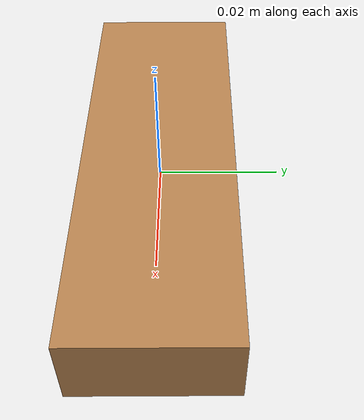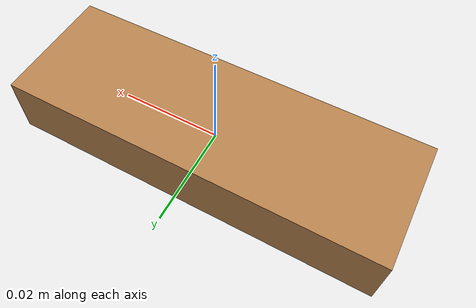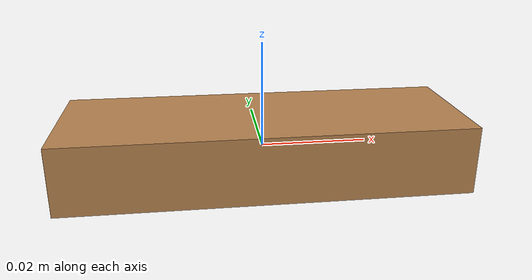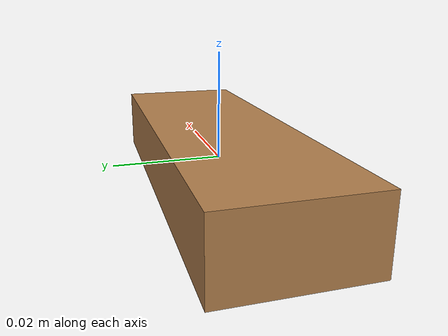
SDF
<?xml version="1.0" ?>
<sdf version="1.6">
  <model name="jenga_block">
    <static>false</static>
    <link name="link">
      <pose>0 0 0 0 0 0</pose>

      <!-- Appearance -->
      <visual name="visual">
        <geometry>
          <box>
            <size>0.075 0.025 0.0127</size> <!-- Length x Width x Height -->
          </box>
        </geometry>
        <material>
          <script>
            <uri>file://media/materials/scripts/gazebo.material</uri>
            <name>Gazebo/Wood</name>
          </script>
          <ambient>0.7 0.5 0.3 1</ambient>
        </material>
      </visual>

      <!-- Collision for physics -->
      <collision name="collision">
        <geometry>
          <box>
            <size>0.075 0.025 0.0127</size>
          </box>
        </geometry>
        <surface>
          <friction>
            <ode>
              <mu>2.1</mu>
              <mu2>2.1</mu2>
            </ode>
          </friction>
        </surface>
      </collision>

      <!-- Mass and inertia -->
      <inertial>
        <mass>0.025</mass>
        <inertia>
          <ixx>6.61e-6</ixx>
          <iyy>1.27e-4</iyy>
          <izz>1.58e-4</izz>
        </inertia>
      </inertial>
    </link>
  </model>
</sdf>
